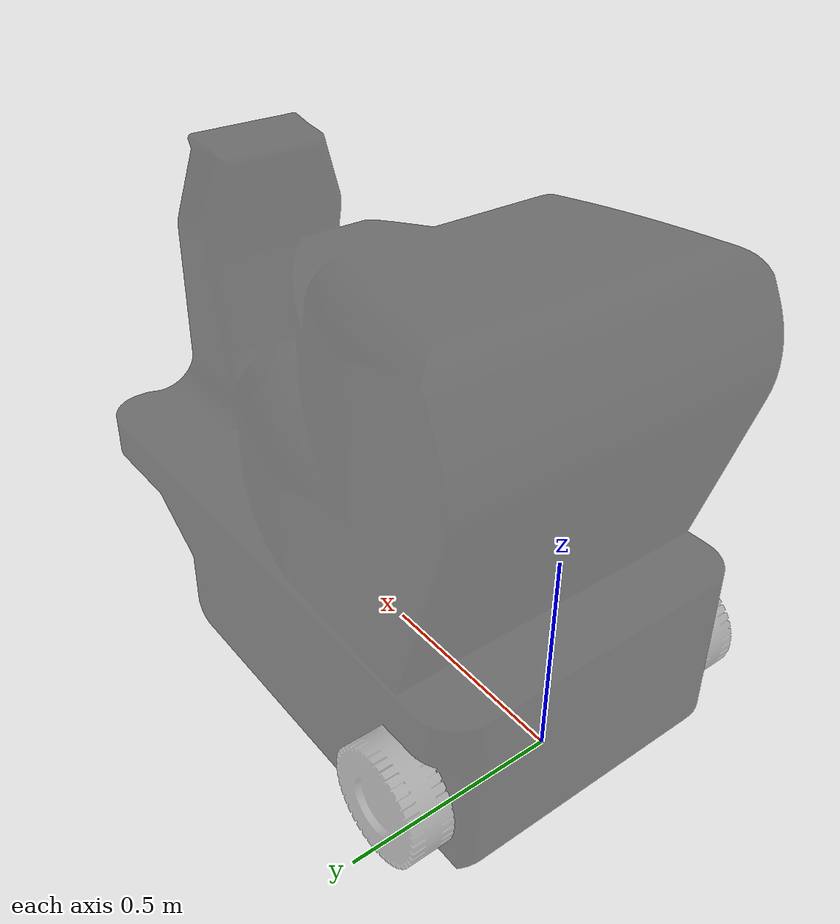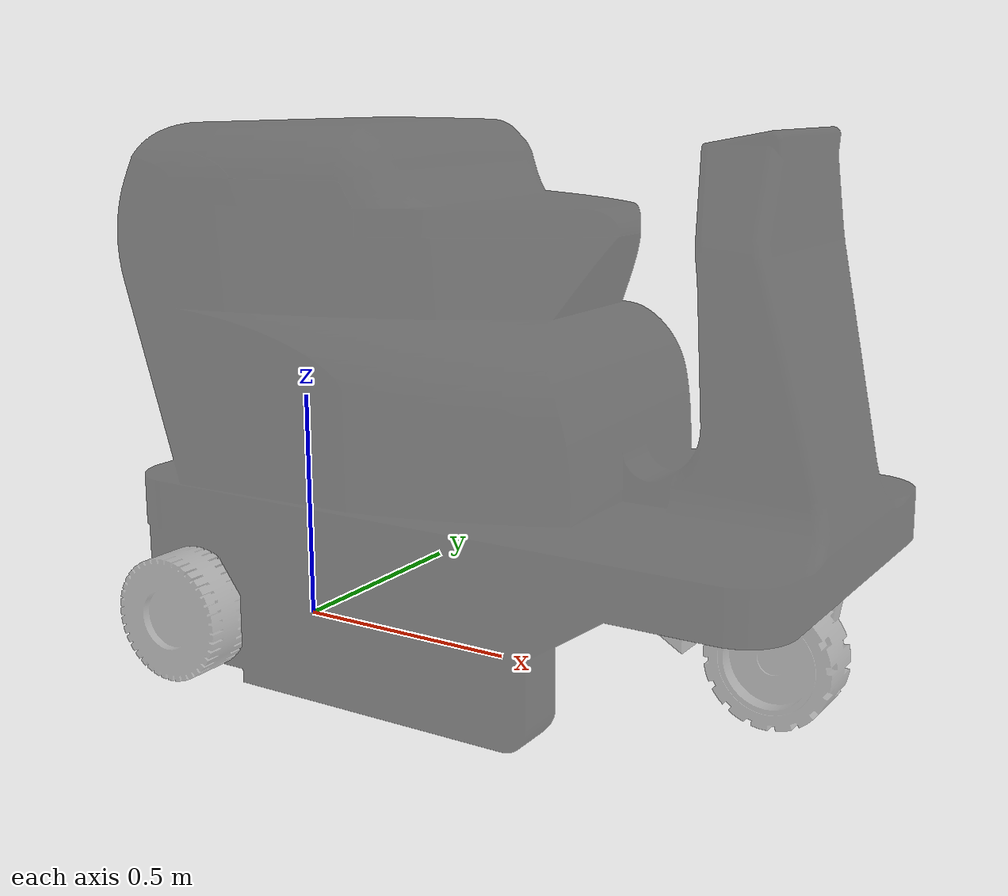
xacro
<?xml version="1.0"?>
<robot xmlns:xacro="http://www.ros.org/wiki/xacro" name="hakurounkun">

  <xacro:property name="robot_namespace" value="hakuroukun"/>
  <xacro:property name="wheel_radius" value="0.125"/>
  <xacro:property name="b2f_axis_distance" value="1.1"/>
  <xacro:property name="b_axis_length" value="0.8"/>

  <xacro:include filename="hakuroukun_inertial_macro.xacro"/>

  <!-- Gazebo plugins -->
  <gazebo>
    <!-- Load ros_control plugin -->
    <plugin name="gazebo_ros_control" filename="libgazebo_ros_control.so">
      <robotNamespace>${robot_namespace}</robotNamespace>
      <robotSimType>gazebo_ros_control/DefaultRobotHWSim</robotSimType>
      <legacyModeNS>false</legacyModeNS>
    </plugin>

  <!-- Load gazebo_ros plugin. Publish passive (non-actuated) joints from Gazebo -->
    <plugin name="gazebo_ros_joint_state_publisher" filename="libgazebo_ros_joint_state_publisher.so">
        <robotNamespace>${robot_namespace}</robotNamespace>
        <jointName>
            front_wheel_joint
        </jointName>
        <updateRate>50</updateRate>
        <alwaysOn>true</alwaysOn>
    </plugin>
  </gazebo>

  <!-- Material -->
  <material name="grey">
    <color rgba="0 0 0 0.5"/>
  </material>

  <material name="light_grey">
    <color rgba="0.5 0.5 0.5 0.5"/>
  </material>

  <!-- Null inertial element. This is needed to make the model work with
       Gazebo. -->
  <xacro:macro name="null_inertial">
    <inertial>
      <mass value="0.001"/>
      <inertia ixx="0.001" ixy="0" ixz="0" iyy="0.001" iyz="0" izz="0.001"/>
    </inertial>
  </xacro:macro>

  <!-- Base -->
  <link name="base_link">
    <visual>
        <origin xyz="0 0 0" rpy="0 0 0" />
        <geometry>
            <mesh filename="package://hakuroukun_description/meshes/hakuroukun_base_link.stl" scale="0.001 0.001 0.001" />
        </geometry>
        <material name="grey"/>
    </visual>
    <collision>
        <origin xyz="0 0 0" rpy="0 0 0" />
        <geometry>
            <mesh filename="package://hakuroukun_description/meshes/hakuroukun_base_link.stl" scale="0.001 0.001 0.001" />
        </geometry>
    </collision>

    <xacro:inertial_base mass="10" x="0" y="0" z="0">
      <origin xyz="0 0 0" rpy="0 0 0" />
    </xacro:inertial_base>
  </link>

  <!-- Base foorprint-->
  <link name="base_footprint"/>
  <joint name="base_footprint_joint" type="fixed">
    <parent link="base_footprint" />
    <child link="base_link" />
    <origin xyz="0 0 ${wheel_radius}"/>
  </joint>

  <!-- Left back wheel -->
  <link name="left_back_wheel">
    <visual>
      <origin xyz="0 0 0" rpy="0 0 0" />
      <geometry>
        <mesh filename="package://hakuroukun_description/meshes/hakuroukun_back_wheel.stl" scale="0.001 0.001 0.001" />
      </geometry>
      <material name="light_grey"/>
    </visual>
    <collision>
      <origin xyz="0 0 0" rpy="0 0 0" />
      <geometry>
            <mesh filename="package://hakuroukun_description/meshes/hakuroukun_back_wheel.stl" scale="0.001 0.001 0.001" />
      </geometry>
    </collision>
    <xacro:inertial_back_wheel mass="1" radius="${wheel_radius}">
      <origin xyz="0 0 0" rpy="0 0 0" />
    </xacro:inertial_back_wheel>
  </link>

  <joint name="left_back_wheel_joint" type="continuous">
    <parent link="base_link" />
    <child link="left_back_wheel" />
    <origin xyz="0 -${b_axis_length/2} 0" rpy="0 0 3.1415" />
    <axis xyz="0 1 0"/>
  </joint>

  <transmission name="left_back_wheel_trans">
    <type>transmission_interface/SimpleTransmission</type>
    <actuator name="left_back_wheel_motor">
      <mechanicalReduction>1</mechanicalReduction>
      <hardwareInterface>hardware_interface/VelocityJointInterface</hardwareInterface>
    </actuator>
    <joint name="left_back_wheel_joint">
      <hardwareInterface>hardware_interface/VelocityJointInterface</hardwareInterface>
    </joint>
  </transmission>

  <gazebo reference="left_back_wheel">
    <mu1 value="200.0"/>
    <mu2 value="100.0"/>
    <kp value="10000000.0" />
    <kd value="1.0" />
    <material>Gazebo/Grey</material>
  </gazebo>

  <!-- Right back wheel -->
  <link name="right_back_wheel">
    <visual>
      <origin xyz="0 0 0" rpy="0 0 0" />
      <geometry>
        <mesh filename="package://hakuroukun_description/meshes/hakuroukun_back_wheel.stl" scale="0.001 0.001 0.001" />
      </geometry>
      <material name="light_grey"/>
    </visual>
    <collision>
      <origin xyz="0 0 0" rpy="0 0 0" />
      <geometry>
        <mesh filename="package://hakuroukun_description/meshes/hakuroukun_back_wheel.stl" scale="0.001 0.001 0.001" />
      </geometry>
    </collision>

    <xacro:inertial_back_wheel mass="1" radius="${wheel_radius}">
      <origin xyz="0 0 0" rpy="0 0 0" />
    </xacro:inertial_back_wheel>
  </link>

  <joint name="right_back_wheel_joint" type="continuous">
    <parent link="base_link" />
    <child link="right_back_wheel" />
    <origin xyz="0 ${b_axis_length/2} 0" rpy="0 0 0" />
    <axis xyz="0 1 0"/>
  </joint>

  <transmission name="right_back_wheel_trans">
    <type>transmission_interface/SimpleTransmission</type>
    <actuator name="right_back_wheel_motor">
      <mechanicalReduction>1</mechanicalReduction>
      <hardwareInterface>hardware_interface/VelocityJointInterface</hardwareInterface>
    </actuator>
    <joint name="right_back_wheel_joint">
      <hardwareInterface>hardware_interface/VelocityJointInterface</hardwareInterface>
    </joint>
  </transmission>

  <gazebo reference="right_back_wheel">
    <mu1 value="200.0"/>
    <mu2 value="100.0"/>
    <kp value="10000000.0" />
    <kd value="1.0" />
    <material>Gazebo/Grey</material>
  </gazebo>

  <!-- Front wheel -->
  <link name="front_wheel">
    <visual>
        <origin xyz="0 0 0" rpy="0 0 0" />
        <geometry>
            <mesh filename="package://hakuroukun_description/meshes/hakuroukun_front_wheel.stl" scale="0.001 0.001 0.001" />
        </geometry>
        <material name="light_grey"/>
    </visual>
    <collision>
      <origin xyz="0 0 0" rpy="0 0 0" />
      <geometry>
            <mesh filename="package://hakuroukun_description/meshes/hakuroukun_front_wheel.stl" scale="0.001 0.001 0.001" />
      </geometry>
    </collision>
    <xacro:inertial_front_wheel mass="1" length="0.35" radius="0.1" >
      <origin xyz="0 0 0" rpy="0 0 0" />
    </xacro:inertial_front_wheel>
  </link>

  <joint name="front_wheel_joint" type="continuous">
    <parent link="base_link" />
    <child link="front_wheel" />
    <origin xyz="${b2f_axis_distance} 0 0" rpy="0 0 1.57075"/>
    <axis xyz="0 0 1"/>
    <limit effort="30" velocity="1.0"/>
  </joint>

  <transmission name="front_wheel_trans">
    <type>transmission_interface/SimpleTransmission</type>
    <actuator name="front_wheel_motor">
      <mechanicalReduction>1</mechanicalReduction>
      <hardwareInterface>hardware_interface/VelocityJointInterface</hardwareInterface>
    </actuator>
    <joint name="front_wheel_joint">
      <hardwareInterface>hardware_interface/VelocityJointInterface</hardwareInterface>
    </joint>
  </transmission>

  <gazebo reference="front_wheel">
    <mu1 value="200.0"/>
    <mu2 value="100.0"/>
    <kp value="10000000.0" />
    <kd value="1.0" />
    <material>Gazebo/Grey</material>
  </gazebo>

</robot>
